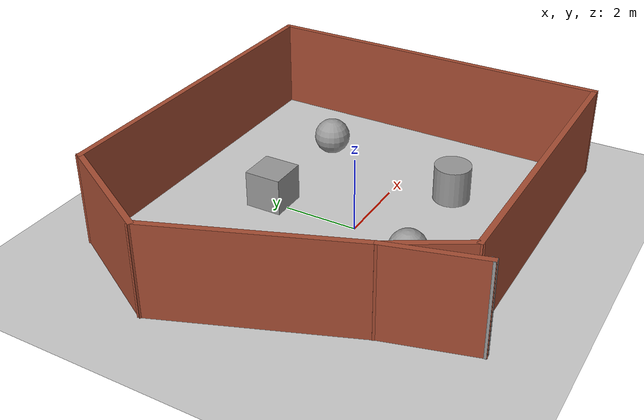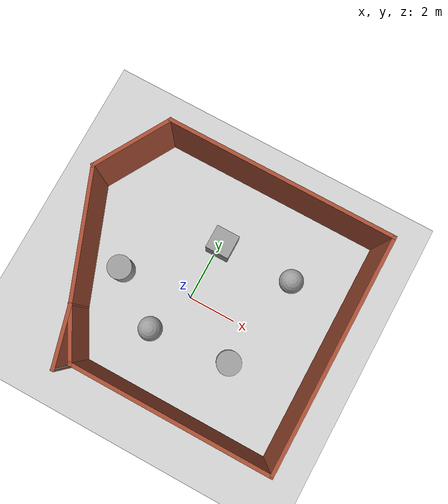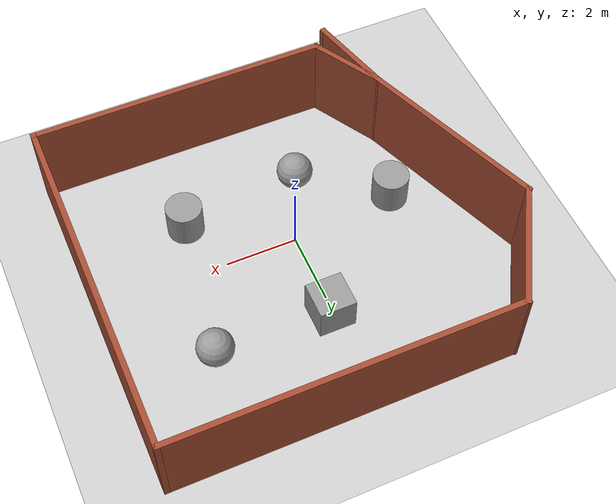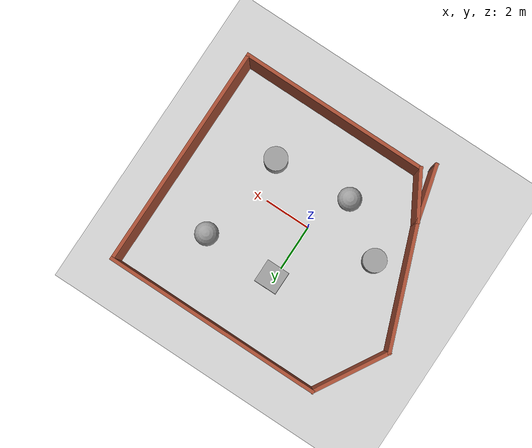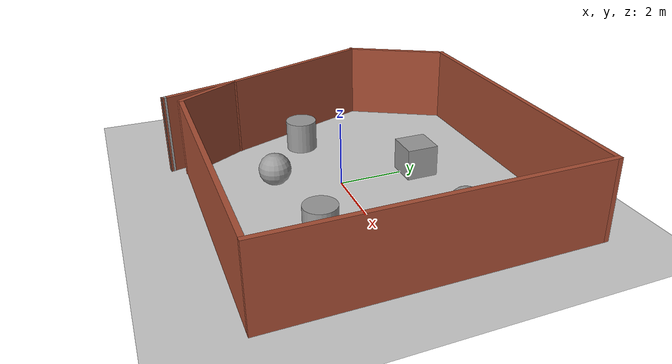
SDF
<sdf version="1.6">
 <world name="default">
  <light name="sun" type="directional">
   <pose>0 0 10 0 -0 0</pose>
   <diffuse>0.8 0.8 0.8 1</diffuse>
   <specular>0.2 0.2 0.2 1</specular>
   <attenuation>
    <range>1000</range>
    <constant>0.9</constant>
    <linear>0.01</linear>
    <quadratic>0.001</quadratic>
   </attenuation>
   <direction>-0.5 0.1 -0.9</direction>
  </light>
  <model name="ground_plane">
   <static>1</static>
   <link name="link">
    <collision name="collision">
     <geometry><plane><normal>0 0 1</normal><size>100 100</size></plane></geometry>
     <surface><friction><ode><mu>100</mu><mu2>50</mu2></ode></friction></surface>
    </collision>
    <visual name="visual">
     <cast_shadows>0</cast_shadows>
     <geometry><plane><normal>0 0 1</normal><size>100 100</size></plane></geometry>
     <material>
      <script><uri>file://media/materials/scripts/gazebo.material</uri><name>Gazebo/Grey</name></script>
     </material>
    </visual>
   </link>
  </model>
  <gravity>0 0 -9.8</gravity>
  <magnetic_field>6e-06 2.3e-05 -4.2e-05</magnetic_field>
  <atmosphere type="adiabatic"/>
  <physics name="default_physics" default="0" type="ode">
   <max_step_size>0.001</max_step_size>
   <real_time_factor>1</real_time_factor>
   <real_time_update_rate>1000</real_time_update_rate>
  </physics>
  <scene><ambient>0.4 0.4 0.4 1</ambient><background>0.7 0.7 0.7 1</background><shadows>1</shadows></scene>
  <spherical_coordinates>
   <surface_model>EARTH_WGS84</surface_model>
   <latitude_deg>0</latitude_deg>
   <longitude_deg>0</longitude_deg>
   <elevation>0</elevation>
   <heading_deg>0</heading_deg>
  </spherical_coordinates>
  <model name="unit_box">
   <pose>0.108568 2.5038 0.499995 1e-05 -0 0</pose>
   <link name="link">
    <inertial>
     <mass>1</mass>
     <inertia>
      <ixx>0.166667</ixx>
      <ixy>0</ixy>
      <ixz>0</ixz>
      <iyy>0.166667</iyy>
      <iyz>0</iyz>
      <izz>0.166667</izz>
     </inertia>
    </inertial>
    <collision name="collision"><geometry><box><size>1 1 1</size></box></geometry></collision>
    <visual name="visual">
     <geometry><box><size>1 1 1</size></box></geometry>
     <material>
      <script><name>Gazebo/Grey</name><uri>file://media/materials/scripts/gazebo.material</uri></script>
     </material>
    </visual>
   </link>
  </model>
  <model name="unit_cylinder">
   <pose>2.58738 -1.54734 0.499992 -3e-06 3e-06 0</pose>
   <link name="link">
    <inertial>
     <mass>1</mass>
     <inertia><ixx>0.145833</ixx><ixy>0</ixy><ixz>0</ixz><iyy>0.145833</iyy><iyz>0</iyz><izz>0.125</izz></inertia>
    </inertial>
    <collision name="collision">
     <geometry><cylinder><radius>0.5</radius><length>1</length></cylinder></geometry>
    </collision>
    <visual name="visual">
     <geometry><cylinder><radius>0.5</radius><length>1</length></cylinder></geometry>
     <material>
      <script><name>Gazebo/Grey</name><uri>file://media/materials/scripts/gazebo.material</uri></script>
     </material>
    </visual>
   </link>
  </model>
  <model name="unit_cylinder_0">
   <pose>-2.97377 -0.320795 0.499992 -3e-06 4e-06 0</pose>
   <link name="link">
    <inertial>
     <mass>1</mass>
     <inertia><ixx>0.145833</ixx><ixy>0</ixy><ixz>0</ixz><iyy>0.145833</iyy><iyz>0</iyz><izz>0.125</izz></inertia>
    </inertial>
    <collision name="collision">
     <geometry><cylinder><radius>0.5</radius><length>1</length></cylinder></geometry>
    </collision>
    <visual name="visual">
     <geometry><cylinder><radius>0.5</radius><length>1</length></cylinder></geometry>
     <material>
      <script><name>Gazebo/Grey</name><uri>file://media/materials/scripts/gazebo.material</uri></script>
     </material>
    </visual>
   </link>
  </model>
  <model name="unit_sphere">
   <pose>-0.780117 -1.86691 0.5 0 -0 0</pose>
   <link name="link">
    <inertial>
     <mass>1</mass>
     <inertia><ixx>0.1</ixx><ixy>0</ixy><ixz>0</ixz><iyy>0.1</iyy><iyz>0</iyz><izz>0.1</izz></inertia>
    </inertial>
    <collision name="collision"><geometry><sphere><radius>0.5</radius></sphere></geometry></collision>
    <visual name="visual">
     <geometry><sphere><radius>0.5</radius></sphere></geometry>
     <material>
      <script><name>Gazebo/Grey</name><uri>file://media/materials/scripts/gazebo.material</uri></script>
     </material>
    </visual>
   </link>
  </model>
  <model name="unit_sphere_0">
   <pose>3.271 2.49099 0.5 0 -0 0</pose>
   <link name="link">
    <inertial>
     <mass>1</mass>
     <inertia><ixx>0.1</ixx><ixy>0</ixy><ixz>0</ixz><iyy>0.1</iyy><iyz>0</iyz><izz>0.1</izz></inertia>
    </inertial>
    <collision name="collision"><geometry><sphere><radius>0.5</radius></sphere></geometry></collision>
    <visual name="visual">
     <geometry><sphere><radius>0.5</radius></sphere></geometry>
     <material>
      <script><name>Gazebo/Grey</name><uri>file://media/materials/scripts/gazebo.material</uri></script>
     </material>
    </visual>
   </link>
  </model>
  <model name="Walls">
   <pose>0.122277 0.354662 0 0 -0 0</pose>
   <link name="Wall_0">
    <collision name="Wall_0_Collision">
     <geometry><box><size>2.25 0.15 2.5</size></box></geometry>
     <pose>0 0 1.25 0 -0 0</pose>
    </collision>
    <visual name="Wall_0_Visual">
     <pose>0 0 1.25 0 -0 0</pose>
     <geometry><box><size>2.25 0.15 2.5</size></box></geometry>
     <material>
      <script><uri>file://media/materials/scripts/gazebo.material</uri><name>Gazebo/Bricks</name></script>
      <ambient>1 1 1 1</ambient>
     </material>
     <meta><layer>0</layer></meta>
    </visual>
    <pose>-3.09877 -3.67034 0 0 -0 -1.0472</pose>
   </link>
   <link name="Wall_1">
    <collision name="Wall_1_Collision">
     <geometry><box><size>8.25 0.15 2.5</size></box></geometry>
     <pose>0 0 1.25 0 -0 0</pose>
    </collision>
    <visual name="Wall_1_Visual">
     <pose>0 0 1.25 0 -0 0</pose>
     <geometry><box><size>8.25 0.15 2.5</size></box></geometry>
     <material>
      <script><uri>file://media/materials/scripts/gazebo.material</uri><name>Gazebo/Bricks</name></script>
      <ambient>1 1 1 1</ambient>
     </material>
     <meta><layer>0</layer></meta>
    </visual>
    <pose>1.47623 -4.57966 0 0 -0 0</pose>
   </link>
   <link name="Wall_2">
    <collision name="Wall_2_Collision">
     <geometry><box><size>9.75 0.15 2.5</size></box></geometry>
     <pose>0 0 1.25 0 -0 0</pose>
    </collision>
    <visual name="Wall_2_Visual">
     <pose>0 0 1.25 0 -0 0</pose>
     <geometry><box><size>9.75 0.15 2.5</size></box></geometry>
     <material>
      <script><uri>file://media/materials/scripts/gazebo.material</uri><name>Gazebo/Bricks</name></script>
      <ambient>1 1 1 1</ambient>
     </material>
     <meta><layer>0</layer></meta>
    </visual>
    <pose>5.52623 0.220338 0 0 -0 1.5708</pose>
   </link>
   <link name="Wall_3">
    <collision name="Wall_3_Collision">
     <geometry><box><size>9.5 0.15 2.5</size></box></geometry>
     <pose>0 0 1.25 0 -0 0</pose>
    </collision>
    <visual name="Wall_3_Visual">
     <pose>0 0 1.25 0 -0 0</pose>
     <geometry><box><size>9.5 0.15 2.5</size></box></geometry>
     <material>
      <script><uri>file://media/materials/scripts/gazebo.material</uri><name>Gazebo/Bricks</name></script>
      <ambient>1 1 1 1</ambient>
     </material>
     <meta><layer>0</layer></meta>
    </visual>
    <pose>0.851226 5.02034 0 0 -0 3.14159</pose>
   </link>
   <link name="Wall_4">
    <collision name="Wall_4_Collision">
     <geometry><box><size>3.5 0.15 2.5</size></box></geometry>
     <pose>0 0 1.25 0 -0 0</pose>
    </collision>
    <visual name="Wall_4_Visual">
     <pose>0 0 1.25 0 -0 0</pose>
     <geometry><box><size>3.5 0.15 2.5</size></box></geometry>
     <material>
      <script><uri>file://media/materials/scripts/gazebo.material</uri><name>Gazebo/Bricks</name></script>
      <ambient>1 1 1 1</ambient>
     </material>
     <meta><layer>0</layer></meta>
    </visual>
    <pose>-4.66127 3.56975 0 0 -0 -2.0944</pose>
   </link>
   <link name="Wall_5">
    <collision name="Wall_5_Collision">
     <geometry><box><size>5.37796 0.15 2.5</size></box></geometry>
     <pose>0 0 1.25 0 -0 0</pose>
    </collision>
    <visual name="Wall_5_Visual">
     <pose>0 0 1.25 0 -0 0</pose>
     <geometry><box><size>5.37796 0.15 2.5</size></box></geometry>
     <material>
      <script><uri>file://media/materials/scripts/gazebo.material</uri><name>Gazebo/Bricks</name></script>
      <ambient>1 1 1 1</ambient>
     </material>
     <meta><layer>0</layer></meta>
    </visual>
    <pose>-4.56128 -0.320928 0 0 -0 -1.20398</pose>
   </link>
   <link name="Wall_6">
    <collision name="Wall_6_Collision">
     <geometry><box><size>2.5 0.15 2.5</size></box></geometry>
     <pose>0 0 1.25 0 -0 0</pose>
    </collision>
    <visual name="Wall_6_Visual">
     <pose>0 0 1.25 0 -0 0</pose>
     <geometry><box><size>2.5 0.15 2.5</size></box></geometry>
     <material>
      <script><uri>file://media/materials/scripts/gazebo.material</uri><name>Gazebo/Bricks</name></script>
      <ambient>1 1 1 1</ambient>
     </material>
     <meta><layer>0</layer></meta>
    </visual>
    <pose>-3.31966 -3.89597 0 0 -0 -1.309</pose>
   </link>
   <link name="Wall_7">
    <collision name="Wall_7_Collision">
     <geometry><box><size>0.15 0.15 2.5</size></box></geometry>
     <pose>0 0 1.25 0 -0 0</pose>
    </collision>
    <visual name="Wall_7_Visual">
     <pose>0 0 1.25 0 -0 0</pose>
     <geometry><box><size>0.15 0.15 2.5</size></box></geometry>
     <material>
      <script><uri>file://media/materials/scripts/gazebo.material</uri><name>Gazebo/Grey</name></script>
      <ambient>1 1 1 1</ambient>
     </material>
     <meta><layer>0</layer></meta>
    </visual>
    <pose>-3.01555 -5.03093 0 0 -0 0</pose>
   </link>
   <static>1</static>
  </model>
 </world>
</sdf>
